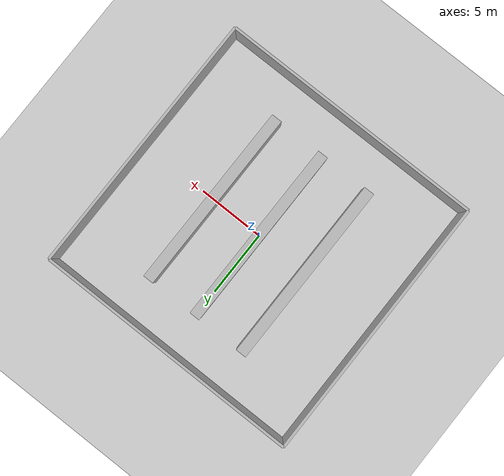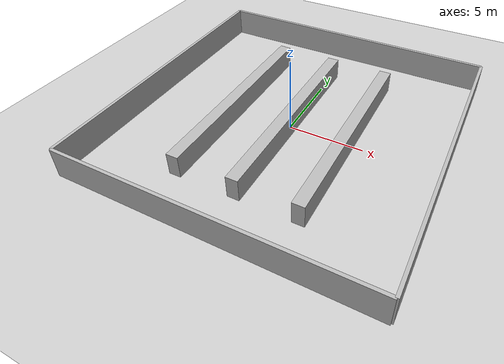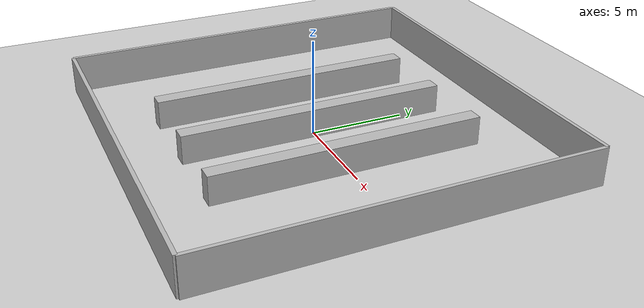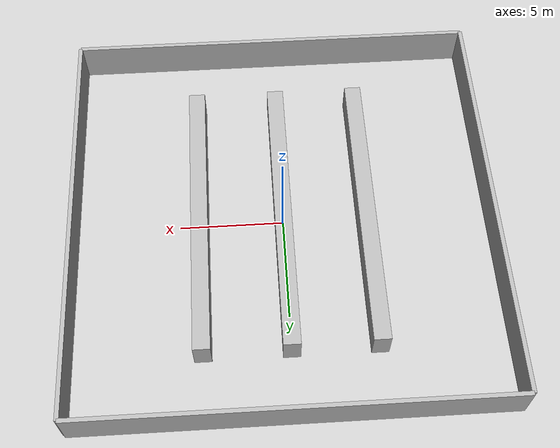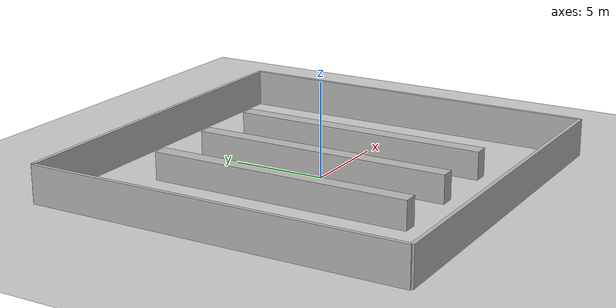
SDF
<?xml version="1.0" ?>
<sdf version="1.9">
  <world name="warehouse_local">

  <plugin filename="gz-sim-physics-system" name="gz::sim::systems::Physics"/>

  <plugin filename="gz-sim-user-commands-system" name="gz::sim::systems::UserCommands"/>

  <plugin filename="gz-sim-scene-broadcaster-system" name="gz::sim::systems::SceneBroadcaster"/>

  <plugin filename="gz-sim-sensors-system" name="gz::sim::systems::Sensors">
    <render_engine>ogre2</render_engine>
  </plugin>

    <physics name="1ms" type="ignored">
      <max_step_size>0.001</max_step_size>
      <real_time_factor>1.0</real_time_factor>
    </physics>

    <!-- Basic light (no Fuel dependency) -->
    <light name="sun" type="directional">
      <pose>0 0 10 0 0 0</pose>
      <diffuse>1 1 1 1</diffuse>
      <specular>0.2 0.2 0.2 1</specular>
      <direction>-0.5 0.2 -1</direction>
    </light>

    <!-- Flat ground plane (no Fuel dependency) -->
    <model name="ground_plane">
      <static>true</static>
      <link name="link">
        <collision name="collision">
          <geometry>
            <plane>
              <normal>0 0 1</normal>
              <size>200 200</size>
            </plane>
          </geometry>
        </collision>
        <visual name="visual">
          <geometry>
            <plane>
              <normal>0 0 1</normal>
              <size>200 200</size>
            </plane>
          </geometry>
        </visual>
      </link>
    </model>

    <!-- Simple warehouse walls -->
    <model name="walls">
      <static>true</static>

      <link name="north">
        <pose>0 10 1 0 0 0</pose>
        <collision name="c"><geometry><box><size>20 0.2 2</size></box></geometry></collision>
        <visual name="v"><geometry><box><size>20 0.2 2</size></box></geometry></visual>
      </link>

      <link name="south">
        <pose>0 -10 1 0 0 0</pose>
        <collision name="c"><geometry><box><size>20 0.2 2</size></box></geometry></collision>
        <visual name="v"><geometry><box><size>20 0.2 2</size></box></geometry></visual>
      </link>

      <link name="east">
        <pose>10 0 1 0 0 0</pose>
        <collision name="c"><geometry><box><size>0.2 20 2</size></box></geometry></collision>
        <visual name="v"><geometry><box><size>0.2 20 2</size></box></geometry></visual>
      </link>

      <link name="west">
        <pose>-10 0 1 0 0 0</pose>
        <collision name="c"><geometry><box><size>0.2 20 2</size></box></geometry></collision>
        <visual name="v"><geometry><box><size>0.2 20 2</size></box></geometry></visual>
      </link>
    </model>

    <!-- Shelves (obstacles) -->
    <model name="shelf_row_1">
      <static>true</static>
      <link name="link">
        <pose>-4 0 0.75 0 0 0</pose>
        <collision name="c"><geometry><box><size>0.8 14 1.5</size></box></geometry></collision>
        <visual name="v"><geometry><box><size>0.8 14 1.5</size></box></geometry></visual>
      </link>
    </model>

    <model name="shelf_row_2">
      <static>true</static>
      <link name="link">
        <pose>0 0 0.75 0 0 0</pose>
        <collision name="c"><geometry><box><size>0.8 14 1.5</size></box></geometry></collision>
        <visual name="v"><geometry><box><size>0.8 14 1.5</size></box></geometry></visual>
      </link>
    </model>

    <model name="shelf_row_3">
      <static>true</static>
      <link name="link">
        <pose>4 0 0.75 0 0 0</pose>
        <collision name="c"><geometry><box><size>0.8 14 1.5</size></box></geometry></collision>
        <visual name="v"><geometry><box><size>0.8 14 1.5</size></box></geometry></visual>
      </link>
    </model>

  </world>
</sdf>
